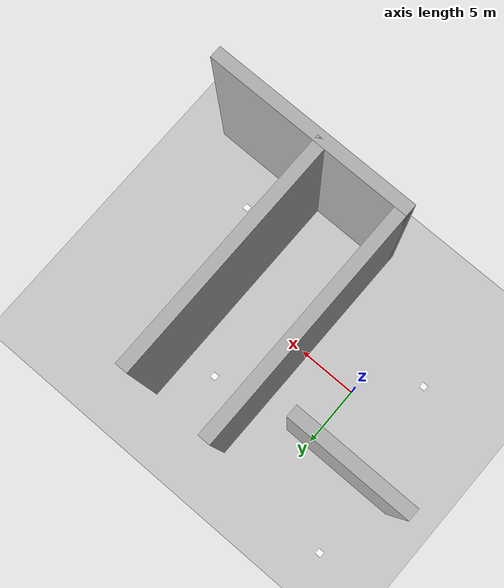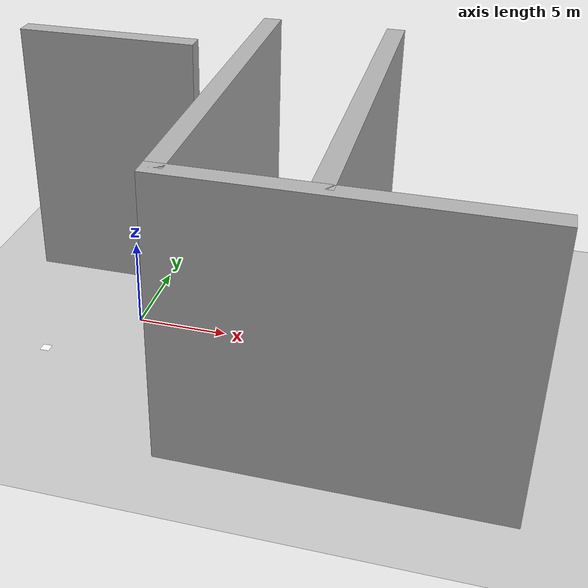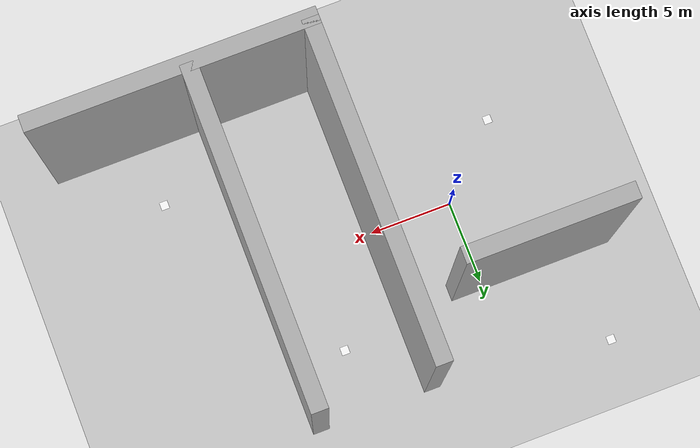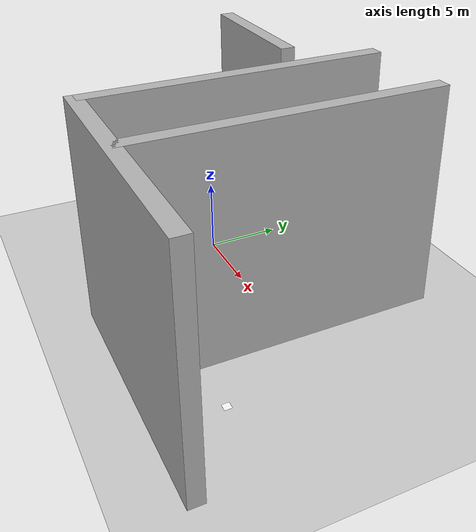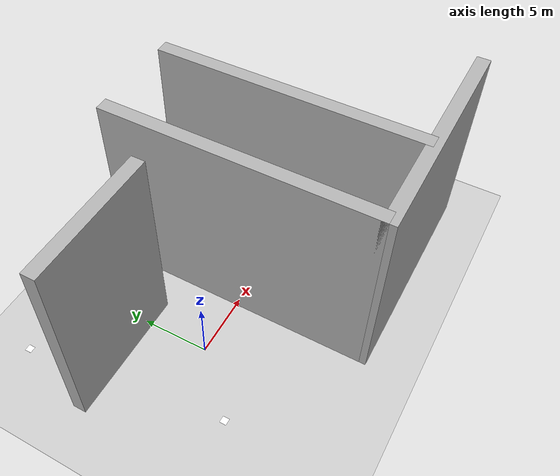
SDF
<?xml version="1.0" encoding="UTF-8"?>
<sdf version="1.9">
  <world name="walls">
    <physics type="ode">
      <max_step_size>0.004</max_step_size>
      <real_time_factor>1.0</real_time_factor>
      <real_time_update_rate>250</real_time_update_rate>
    </physics>
    <gravity>0 0 -9.8</gravity>
    <magnetic_field>6e-06 2.3e-05 -4.2e-05</magnetic_field>
    <atmosphere type="adiabatic"/>
    <scene>
      <grid>false</grid>
      <ambient>0.4 0.4 0.4 1</ambient>
      <background>0.7 0.7 0.7 1</background>
      <shadows>true</shadows>
    </scene>
    <model name="ground_plane">
      <static>true</static>
      <link name="link">
        <collision name="collision">
          <geometry>
            <plane>
              <normal>0 0 1</normal>
              <size>1 1</size>
            </plane>
          </geometry>
          <surface>
            <friction>
              <ode/>
            </friction>
            <bounce/>
            <contact/>
          </surface>
        </collision>
        <visual name="visual">
          <geometry>
            <plane>
              <normal>0 0 1</normal>
              <size>100 100</size>
            </plane>
          </geometry>
          <material>
            <ambient>0.8 0.8 0.8 1</ambient>
            <diffuse>0.8 0.8 0.8 1</diffuse>
            <specular>0.8 0.8 0.8 1</specular>
          </material>
        </visual>
        <pose>0 0 0 0 -0 0</pose>
        <inertial>
          <pose>0 0 0 0 -0 0</pose>
          <mass>1</mass>
          <inertia>
            <ixx>1</ixx>
            <ixy>0</ixy>
            <ixz>0</ixz>
            <iyy>1</iyy>
            <iyz>0</iyz>
            <izz>1</izz>
          </inertia>
        </inertial>
        <enable_wind>false</enable_wind>
      </link>
      <pose>0 0 0 0 -0 0</pose>
      <self_collide>false</self_collide>
    </model>
    <light name="sunUTC" type="directional">
      <pose>0 0 500 0 -0 0</pose>
      <cast_shadows>true</cast_shadows>
      <intensity>1</intensity>
      <direction>0.001 0.625 -0.78</direction>
      <diffuse>0.904 0.904 0.904 1</diffuse>
      <specular>0.271 0.271 0.271 1</specular>
      <attenuation>
        <range>2000</range>
        <linear>0</linear>
        <constant>1</constant>
        <quadratic>0</quadratic>
      </attenuation>
      <spot>
        <inner_angle>0</inner_angle>
        <outer_angle>0</outer_angle>
        <falloff>0</falloff>
      </spot>
    </light>
    <spherical_coordinates>
      <surface_model>EARTH_WGS84</surface_model>
      <world_frame_orientation>ENU</world_frame_orientation>
      <latitude_deg>47.397971057728974</latitude_deg>
      <longitude_deg> 8.546163739800146</longitude_deg>
      <elevation>0</elevation>
    </spherical_coordinates>
    <include>
      <uri>model://arucotag</uri>
    </include>
    <model name="box1">
      <pose>5 0 7.5 0 0 0</pose>
      <static>true</static>
      <link name="link1">
      <collision name="collision">
        <geometry>
          <box>
            <size>1 20 15</size>
          </box>
        </geometry>
      </collision>
      <visual name="visual">
        <geometry>
          <box>
            <size>1 20 15</size>
          </box>
        </geometry>
        <material>
          <ambient>0.3 0.3 0.3 1</ambient>
          <diffuse>0.7 0.7 0.7 1</diffuse>
          <specular>1 1 1 1</specular>
        </material>
      </visual>
      </link>
    </model>
    <model name="box2">
      <static>true</static>
      <pose>-3 5 7.5 0 0 0</pose>
      <link name="link2">
      <collision name="collision">
        <geometry>
          <box>
            <size>10 1 15</size>
          </box>
        </geometry>
      </collision>
      <visual name="visual">
        <geometry>
          <box>
            <size>10 1 15</size>
          </box>
        </geometry>
        <material>
          <ambient>0.3 0.3 0.3 1</ambient>
          <diffuse>0.7 0.7 0.7 1</diffuse>
          <specular>1 1 1 1</specular>
        </material>
      </visual>
      </link>
    </model>
    <model name="box3">
      <static>true</static>
      <pose>13 -10 7.5 0 0 0</pose>
      <link name="link3">
      <collision name="collision">
        <geometry>
          <box>
            <size>17 1 15</size>
          </box>
        </geometry>
      </collision>
      <visual name="visual">
        <geometry>
          <box>
            <size>17 1 15</size>
          </box>
        </geometry>
        <material>
          <ambient>0.3 0.3 0.3 1</ambient>
          <diffuse>0.7 0.7 0.7 1</diffuse>
          <specular>1 1 1 1</specular>
        </material>
      </visual>
      </link>
    </model>
    <model name="box4">
      <pose>12 0 7.5 0 0 0</pose>
      <static>true</static>
      <link name="link4">
      <collision name="collision">
        <geometry>
          <box>
            <size>1 20 15</size>
          </box>
        </geometry>
      </collision>
      <visual name="visual">
        <geometry>
          <box>
            <size>1 20 15</size>
          </box>
        </geometry>
        <material>
          <ambient>0.3 0.3 0.3 1</ambient>
          <diffuse>0.7 0.7 0.7 1</diffuse>
          <specular>1 1 1 1</specular>
        </material>
      </visual>
      </link>
    </model>
  </world>
</sdf>

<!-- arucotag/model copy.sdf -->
<sdf version='1.9'>
  <model name='arucotag'>
    <static>true</static>

    <!-- TAG 0 -->
    <link name='tag_0'>
      <pose>-4 -4 0.1 0 0 0</pose>
      <visual name='tag_0_visual'>
        <geometry>
          <plane>
            <normal>0 0 1</normal>
            <size>0.5 0.5</size>
          </plane>
        </geometry>
        <material>
          <pbr>
            <metal>
              <albedo_map>model://arucotag/tag_0.png</albedo_map>
              <metalness>0.0</metalness>
              <roughness>1.0</roughness>
            </metal>
          </pbr>
          <ambient>1 1 1 1</ambient>
          <diffuse>1 1 1 1</diffuse>
          <specular>0 0 0 1</specular>
        </material>
      </visual>
    </link>

    <!-- TAG 1 -->
    <link name='tag_1'>
      <pose>16 -6 0.001 0 0 0</pose>
      <visual name='tag_1_visual'>
        <geometry>
          <plane>
            <normal>0 0 1</normal>
            <size>0.5 0.5</size>
          </plane>
        </geometry>
        <material>
          <pbr>
            <metal>
              <albedo_map>model://arucotag/tag_1.png</albedo_map>
              <metalness>0.0</metalness>
              <roughness>1.0</roughness>
            </metal>
          </pbr>
          <ambient>1 1 1 1</ambient>
          <diffuse>1 1 1 1</diffuse>
          <specular>0 0 0 1</specular>
        </material>
      </visual>
    </link>

    <!-- TAG 2 -->
    <link name='tag_2'>
      <pose>-6 11 0.001 0 0 0</pose>
      <visual name='tag_2_visual'>
        <geometry>
          <plane>
            <normal>0 0 1</normal>
            <size>0.5 0.5</size>
          </plane>
        </geometry>
        <material>
          <pbr>
            <metal>
              <albedo_map>model://arucotag/tag_2.png</albedo_map>
              <metalness>0.0</metalness>
              <roughness>1.0</roughness>
            </metal>
          </pbr>
          <ambient>1 1 1 1</ambient>
          <diffuse>1 1 1 1</diffuse>
          <specular>0 0 0 1</specular>
        </material>
      </visual>
    </link>

    <!-- TAG 3 -->
    <link name='tag_3'>
      <pose>9 6 0.001 0 0 0</pose>
      <visual name='tag_3_visual'>
        <geometry>
          <plane>
            <normal>0 0 1</normal>
            <size>0.5 0.5</size>
          </plane>
        </geometry>
        <material>
          <pbr>
            <metal>
              <albedo_map>model://arucotag/tag_3.png</albedo_map>
              <metalness>0.0</metalness>
              <roughness>1.0</roughness>
            </metal>
          </pbr>
          <ambient>1 1 1 1</ambient>
          <diffuse>1 1 1 1</diffuse>
          <specular>0 0 0 1</specular>
        </material>
      </visual>
    </link>

  </model>
</sdf>
